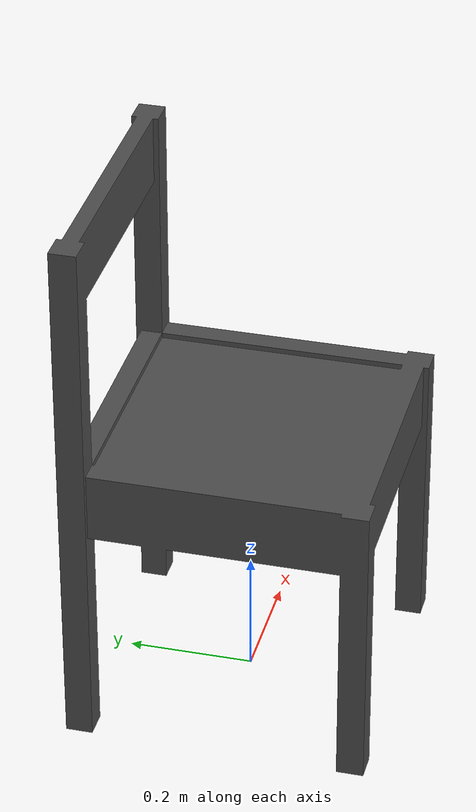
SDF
<?xml version="1.0" ?>
<sdf version="1.5">
  <model name="chair">
    <static>true</static>
    <link name='defaultModel_0::custom_0'>
      <pose>0 0 0 0 0 0</pose>
      <gravity>1</gravity>
      <self_collide>0</self_collide>
      <kinematic>0</kinematic>
      <visual name='custom_0_visual'>
        <pose>0 0 0 0 0 0</pose>
        <geometry>
          <mesh>
            <uri>model://chair/chair.dae</uri>
            <scale>1.7 1.7 1.7</scale>
          </mesh>
        </geometry>
        <material>
          <script>
            <uri>file://media/materials/scripts/gazebo.material</uri>
            <name>Gazebo/DarkGrey</name>
          </script>
        </material>
      </visual>
      <collision name='defaultModel_0::custom_0_collision'>
        <geometry>
          <mesh>
            <uri>model://chair/chair.dae</uri>
            <scale>1.7 1.7 1.7</scale>
          </mesh>
        </geometry>
        <pose>0 0 0 0 0 0</pose>
      </collision>
    </link>
  </model>
</sdf>
